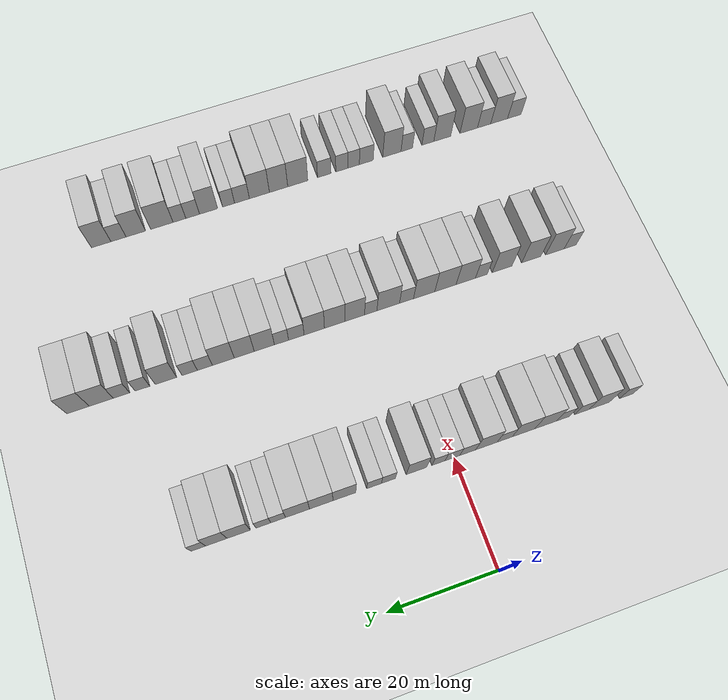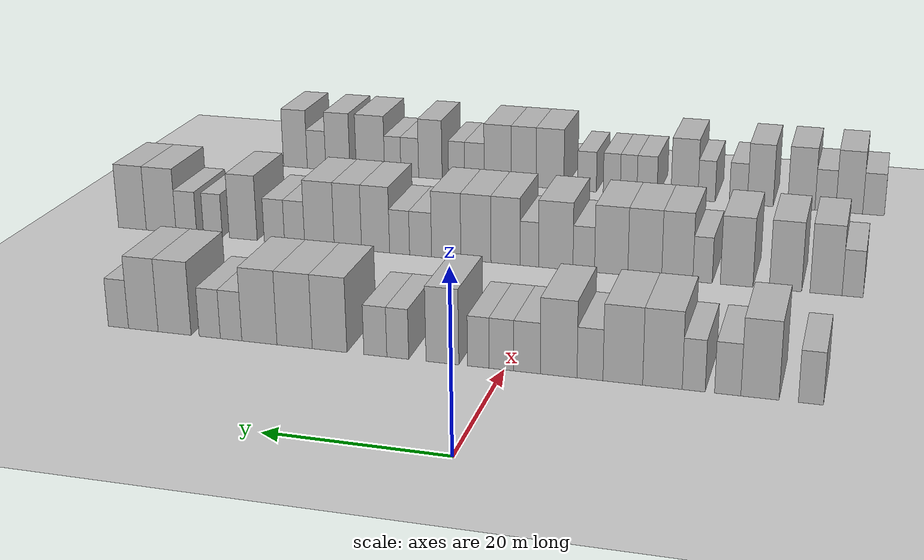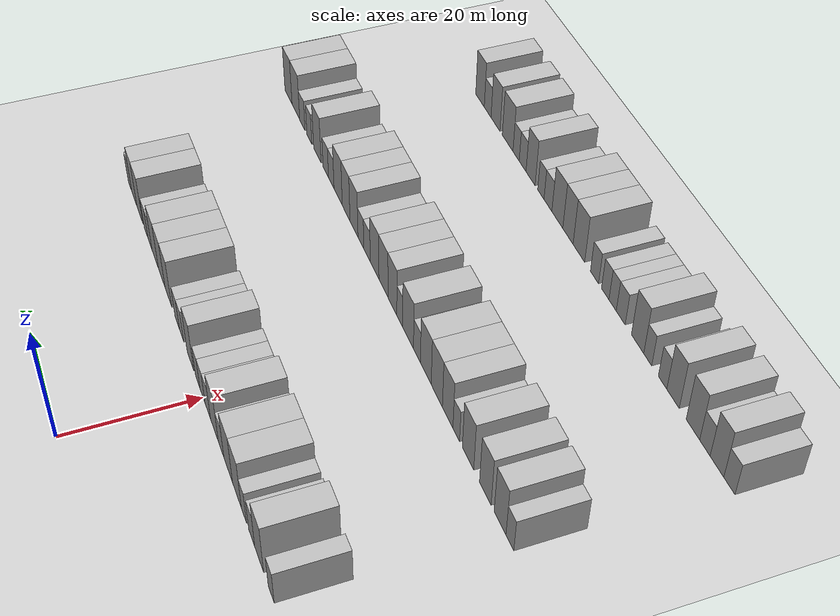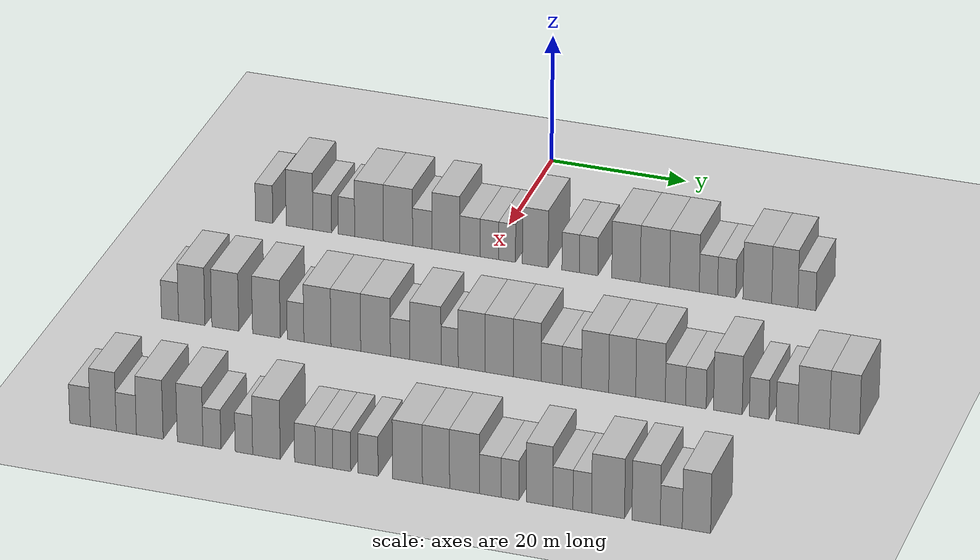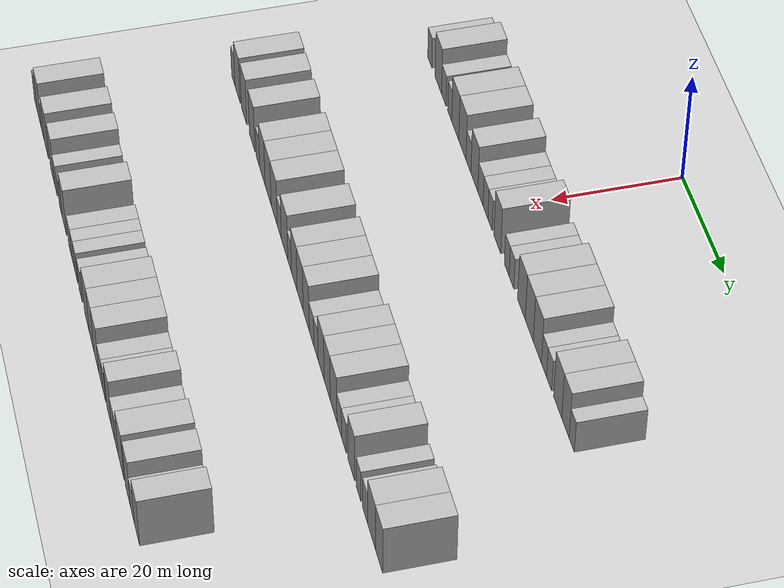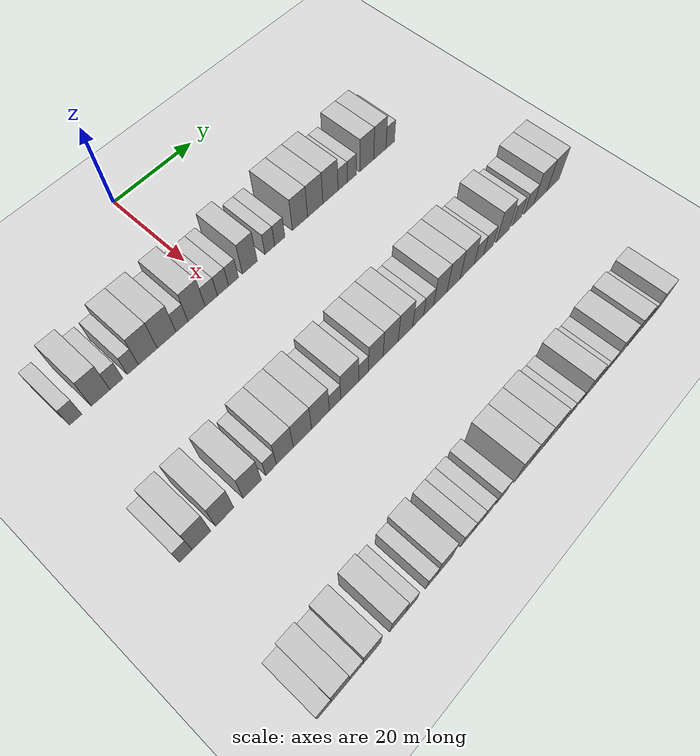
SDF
<sdf version="1.6">
 <world name="default">
  <include><name>ground_plane_1</name><uri>model://HANNAS_ground_plane</uri></include>
  <model name="building_109">
   <static>1</static>
   <pose>25.0000 -33.0625 0 0.000000 0.000000 0.000000</pose>
   <link name="link">
    <pose>0 0 3.00 0 0 0</pose>
    <collision name="collision"><geometry><box><size>10.0000 2.5903 6.0000</size></box></geometry></collision>
    <visual name="visual">
     <cast_shadows>0</cast_shadows>
     <geometry><box><size>10.0000 2.5903 6.0000</size></box></geometry>
     <material>
      <script>
       <uri>model://HANNAS_wall/materials/scripts</uri>
       <uri>model://HANNAS_wall/materials/textures</uri>
       <name>vrc/HANNAS_wall</name>
      </script>
     </material>
    </visual>
   </link>
  </model>
  <model name="building_110">
   <static>1</static>
   <pose>25.0000 -27.7689 0 0.000000 0.000000 0.000000</pose>
   <link name="link">
    <pose>0 0 4.50 0 0 0</pose>
    <collision name="collision"><geometry><box><size>10.0000 3.9970 9.0000</size></box></geometry></collision>
    <visual name="visual">
     <cast_shadows>0</cast_shadows>
     <geometry><box><size>10.0000 3.9970 9.0000</size></box></geometry>
     <material>
      <script>
       <uri>model://HANNAS_wall/materials/scripts</uri>
       <uri>model://HANNAS_wall/materials/textures</uri>
       <name>vrc/HANNAS_wall</name>
      </script>
     </material>
    </visual>
   </link>
  </model>
  <model name="building_111">
   <static>1</static>
   <pose>25.0000 -24.3842 0 0.000000 0.000000 0.000000</pose>
   <link name="link">
    <pose>0 0 3.00 0 0 0</pose>
    <collision name="collision"><geometry><box><size>10.0000 2.7723 6.0000</size></box></geometry></collision>
    <visual name="visual">
     <cast_shadows>0</cast_shadows>
     <geometry><box><size>10.0000 2.7723 6.0000</size></box></geometry>
     <material>
      <script>
       <uri>model://HANNAS_wall/materials/scripts</uri>
       <uri>model://HANNAS_wall/materials/textures</uri>
       <name>vrc/HANNAS_wall</name>
      </script>
     </material>
    </visual>
   </link>
  </model>
  <model name="building_112">
   <static>1</static>
   <pose>25.0000 -20.7769 0 0.000000 0.000000 0.000000</pose>
   <link name="link">
    <pose>0 0 3.00 0 0 0</pose>
    <collision name="collision"><geometry><box><size>10.0000 2.4424 6.0000</size></box></geometry></collision>
    <visual name="visual">
     <cast_shadows>0</cast_shadows>
     <geometry><box><size>10.0000 2.4424 6.0000</size></box></geometry>
     <material>
      <script>
       <uri>model://HANNAS_wall/materials/scripts</uri>
       <uri>model://HANNAS_wall/materials/textures</uri>
       <name>vrc/HANNAS_wall</name>
      </script>
     </material>
    </visual>
   </link>
  </model>
  <model name="building_113">
   <static>1</static>
   <pose>25.0000 -17.4277 0 0.000000 0.000000 0.000000</pose>
   <link name="link">
    <pose>0 0 4.50 0 0 0</pose>
    <collision name="collision"><geometry><box><size>10.0000 4.2559 9.0000</size></box></geometry></collision>
    <visual name="visual">
     <cast_shadows>0</cast_shadows>
     <geometry><box><size>10.0000 4.2559 9.0000</size></box></geometry>
     <material>
      <script>
       <uri>model://HANNAS_wall/materials/scripts</uri>
       <uri>model://HANNAS_wall/materials/textures</uri>
       <name>vrc/HANNAS_wall</name>
      </script>
     </material>
    </visual>
   </link>
  </model>
  <model name="building_114">
   <static>1</static>
   <pose>25.0000 -13.1424 0 0.000000 0.000000 0.000000</pose>
   <link name="link">
    <pose>0 0 4.50 0 0 0</pose>
    <collision name="collision"><geometry><box><size>10.0000 4.3146 9.0000</size></box></geometry></collision>
    <visual name="visual">
     <cast_shadows>0</cast_shadows>
     <geometry><box><size>10.0000 4.3146 9.0000</size></box></geometry>
     <material>
      <script>
       <uri>model://HANNAS_wall/materials/scripts</uri>
       <uri>model://HANNAS_wall/materials/textures</uri>
       <name>vrc/HANNAS_wall</name>
      </script>
     </material>
    </visual>
   </link>
  </model>
  <model name="building_115">
   <static>1</static>
   <pose>25.0000 -9.5608 0 0.000000 0.000000 0.000000</pose>
   <link name="link">
    <pose>0 0 3.00 0 0 0</pose>
    <collision name="collision"><geometry><box><size>10.0000 2.8487 6.0000</size></box></geometry></collision>
    <visual name="visual">
     <cast_shadows>0</cast_shadows>
     <geometry><box><size>10.0000 2.8487 6.0000</size></box></geometry>
     <material>
      <script>
       <uri>model://HANNAS_wall/materials/scripts</uri>
       <uri>model://HANNAS_wall/materials/textures</uri>
       <name>vrc/HANNAS_wall</name>
      </script>
     </material>
    </visual>
   </link>
  </model>
  <model name="building_116">
   <static>1</static>
   <pose>25.0000 -6.0993 0 0.000000 0.000000 0.000000</pose>
   <link name="link">
    <pose>0 0 4.50 0 0 0</pose>
    <collision name="collision"><geometry><box><size>10.0000 4.0742 9.0000</size></box></geometry></collision>
    <visual name="visual">
     <cast_shadows>0</cast_shadows>
     <geometry><box><size>10.0000 4.0742 9.0000</size></box></geometry>
     <material>
      <script>
       <uri>model://HANNAS_wall/materials/scripts</uri>
       <uri>model://HANNAS_wall/materials/textures</uri>
       <name>vrc/HANNAS_wall</name>
      </script>
     </material>
    </visual>
   </link>
  </model>
  <model name="building_117">
   <static>1</static>
   <pose>25.0000 -2.5724 0 0.000000 0.000000 0.000000</pose>
   <link name="link">
    <pose>0 0 3.00 0 0 0</pose>
    <collision name="collision"><geometry><box><size>10.0000 2.9797 6.0000</size></box></geometry></collision>
    <visual name="visual">
     <cast_shadows>0</cast_shadows>
     <geometry><box><size>10.0000 2.9797 6.0000</size></box></geometry>
     <material>
      <script>
       <uri>model://HANNAS_wall/materials/scripts</uri>
       <uri>model://HANNAS_wall/materials/textures</uri>
       <name>vrc/HANNAS_wall</name>
      </script>
     </material>
    </visual>
   </link>
  </model>
  <model name="building_118">
   <static>1</static>
   <pose>25.0000 0.3047 0 0.000000 0.000000 0.000000</pose>
   <link name="link">
    <pose>0 0 3.00 0 0 0</pose>
    <collision name="collision"><geometry><box><size>10.0000 2.7744 6.0000</size></box></geometry></collision>
    <visual name="visual">
     <cast_shadows>0</cast_shadows>
     <geometry><box><size>10.0000 2.7744 6.0000</size></box></geometry>
     <material>
      <script>
       <uri>model://HANNAS_wall/materials/scripts</uri>
       <uri>model://HANNAS_wall/materials/textures</uri>
       <name>vrc/HANNAS_wall</name>
      </script>
     </material>
    </visual>
   </link>
  </model>
  <model name="building_119">
   <static>1</static>
   <pose>25.0000 2.9134 0 0.000000 0.000000 0.000000</pose>
   <link name="link">
    <pose>0 0 3.00 0 0 0</pose>
    <collision name="collision"><geometry><box><size>10.0000 2.4431 6.0000</size></box></geometry></collision>
    <visual name="visual">
     <cast_shadows>0</cast_shadows>
     <geometry><box><size>10.0000 2.4431 6.0000</size></box></geometry>
     <material>
      <script>
       <uri>model://HANNAS_wall/materials/scripts</uri>
       <uri>model://HANNAS_wall/materials/textures</uri>
       <name>vrc/HANNAS_wall</name>
      </script>
     </material>
    </visual>
   </link>
  </model>
  <model name="building_120">
   <static>1</static>
   <pose>25.0000 7.0186 0 0.000000 0.000000 0.000000</pose>
   <link name="link">
    <pose>0 0 4.50 0 0 0</pose>
    <collision name="collision"><geometry><box><size>10.0000 3.7671 9.0000</size></box></geometry></collision>
    <visual name="visual">
     <cast_shadows>0</cast_shadows>
     <geometry><box><size>10.0000 3.7671 9.0000</size></box></geometry>
     <material>
      <script>
       <uri>model://HANNAS_wall/materials/scripts</uri>
       <uri>model://HANNAS_wall/materials/textures</uri>
       <name>vrc/HANNAS_wall</name>
      </script>
     </material>
    </visual>
   </link>
  </model>
  <model name="building_121">
   <static>1</static>
   <pose>25.0000 12.1765 0 0.000000 0.000000 0.000000</pose>
   <link name="link">
    <pose>0 0 3.00 0 0 0</pose>
    <collision name="collision"><geometry><box><size>10.0000 2.5488 6.0000</size></box></geometry></collision>
    <visual name="visual">
     <cast_shadows>0</cast_shadows>
     <geometry><box><size>10.0000 2.5488 6.0000</size></box></geometry>
     <material>
      <script>
       <uri>model://HANNAS_wall/materials/scripts</uri>
       <uri>model://HANNAS_wall/materials/textures</uri>
       <name>vrc/HANNAS_wall</name>
      </script>
     </material>
    </visual>
   </link>
  </model>
  <model name="building_122">
   <static>1</static>
   <pose>25.0000 14.7962 0 0.000000 0.000000 0.000000</pose>
   <link name="link">
    <pose>0 0 3.00 0 0 0</pose>
    <collision name="collision"><geometry><box><size>10.0000 2.6904 6.0000</size></box></geometry></collision>
    <visual name="visual">
     <cast_shadows>0</cast_shadows>
     <geometry><box><size>10.0000 2.6904 6.0000</size></box></geometry>
     <material>
      <script>
       <uri>model://HANNAS_wall/materials/scripts</uri>
       <uri>model://HANNAS_wall/materials/textures</uri>
       <name>vrc/HANNAS_wall</name>
      </script>
     </material>
    </visual>
   </link>
  </model>
  <model name="building_123">
   <static>1</static>
   <pose>25.0000 20.2078 0 0.000000 0.000000 0.000000</pose>
   <link name="link">
    <pose>0 0 4.50 0 0 0</pose>
    <collision name="collision"><geometry><box><size>10.0000 4.1329 9.0000</size></box></geometry></collision>
    <visual name="visual">
     <cast_shadows>0</cast_shadows>
     <geometry><box><size>10.0000 4.1329 9.0000</size></box></geometry>
     <material>
      <script>
       <uri>model://HANNAS_wall/materials/scripts</uri>
       <uri>model://HANNAS_wall/materials/textures</uri>
       <name>vrc/HANNAS_wall</name>
      </script>
     </material>
    </visual>
   </link>
  </model>
  <model name="building_124">
   <static>1</static>
   <pose>25.0000 24.3872 0 0.000000 0.000000 0.000000</pose>
   <link name="link">
    <pose>0 0 4.50 0 0 0</pose>
    <collision name="collision"><geometry><box><size>10.0000 4.2260 9.0000</size></box></geometry></collision>
    <visual name="visual">
     <cast_shadows>0</cast_shadows>
     <geometry><box><size>10.0000 4.2260 9.0000</size></box></geometry>
     <material>
      <script>
       <uri>model://HANNAS_wall/materials/scripts</uri>
       <uri>model://HANNAS_wall/materials/textures</uri>
       <name>vrc/HANNAS_wall</name>
      </script>
     </material>
    </visual>
   </link>
  </model>
  <model name="building_125">
   <static>1</static>
   <pose>25.0000 28.6368 0 0.000000 0.000000 0.000000</pose>
   <link name="link">
    <pose>0 0 4.50 0 0 0</pose>
    <collision name="collision"><geometry><box><size>10.0000 4.2732 9.0000</size></box></geometry></collision>
    <visual name="visual">
     <cast_shadows>0</cast_shadows>
     <geometry><box><size>10.0000 4.2732 9.0000</size></box></geometry>
     <material>
      <script>
       <uri>model://HANNAS_wall/materials/scripts</uri>
       <uri>model://HANNAS_wall/materials/textures</uri>
       <name>vrc/HANNAS_wall</name>
      </script>
     </material>
    </visual>
   </link>
  </model>
  <model name="building_126">
   <static>1</static>
   <pose>25.0000 32.0913 0 0.000000 0.000000 0.000000</pose>
   <link name="link">
    <pose>0 0 3.00 0 0 0</pose>
    <collision name="collision"><geometry><box><size>10.0000 2.6359 6.0000</size></box></geometry></collision>
    <visual name="visual">
     <cast_shadows>0</cast_shadows>
     <geometry><box><size>10.0000 2.6359 6.0000</size></box></geometry>
     <material>
      <script>
       <uri>model://HANNAS_wall/materials/scripts</uri>
       <uri>model://HANNAS_wall/materials/textures</uri>
       <name>vrc/HANNAS_wall</name>
      </script>
     </material>
    </visual>
   </link>
  </model>
  <model name="building_127">
   <static>1</static>
   <pose>25.0000 34.7178 0 0.000000 0.000000 0.000000</pose>
   <link name="link">
    <pose>0 0 3.00 0 0 0</pose>
    <collision name="collision"><geometry><box><size>10.0000 2.6172 6.0000</size></box></geometry></collision>
    <visual name="visual">
     <cast_shadows>0</cast_shadows>
     <geometry><box><size>10.0000 2.6172 6.0000</size></box></geometry>
     <material>
      <script>
       <uri>model://HANNAS_wall/materials/scripts</uri>
       <uri>model://HANNAS_wall/materials/textures</uri>
       <name>vrc/HANNAS_wall</name>
      </script>
     </material>
    </visual>
   </link>
  </model>
  <model name="building_128">
   <static>1</static>
   <pose>25.0000 39.0813 0 0.000000 0.000000 0.000000</pose>
   <link name="link">
    <pose>0 0 4.50 0 0 0</pose>
    <collision name="collision"><geometry><box><size>10.0000 4.1098 9.0000</size></box></geometry></collision>
    <visual name="visual">
     <cast_shadows>0</cast_shadows>
     <geometry><box><size>10.0000 4.1098 9.0000</size></box></geometry>
     <material>
      <script>
       <uri>model://HANNAS_wall/materials/scripts</uri>
       <uri>model://HANNAS_wall/materials/textures</uri>
       <name>vrc/HANNAS_wall</name>
      </script>
     </material>
    </visual>
   </link>
  </model>
  <model name="building_129">
   <static>1</static>
   <pose>25.0000 43.0020 0 0.000000 0.000000 0.000000</pose>
   <link name="link">
    <pose>0 0 4.50 0 0 0</pose>
    <collision name="collision"><geometry><box><size>10.0000 3.7316 9.0000</size></box></geometry></collision>
    <visual name="visual">
     <cast_shadows>0</cast_shadows>
     <geometry><box><size>10.0000 3.7316 9.0000</size></box></geometry>
     <material>
      <script>
       <uri>model://HANNAS_wall/materials/scripts</uri>
       <uri>model://HANNAS_wall/materials/textures</uri>
       <name>vrc/HANNAS_wall</name>
      </script>
     </material>
    </visual>
   </link>
  </model>
  <model name="building_130">
   <static>1</static>
   <pose>25.0000 46.1460 0 0.000000 0.000000 0.000000</pose>
   <link name="link">
    <pose>0 0 3.00 0 0 0</pose>
    <collision name="collision"><geometry><box><size>10.0000 2.5563 6.0000</size></box></geometry></collision>
    <visual name="visual">
     <cast_shadows>0</cast_shadows>
     <geometry><box><size>10.0000 2.5563 6.0000</size></box></geometry>
     <material>
      <script>
       <uri>model://HANNAS_wall/materials/scripts</uri>
       <uri>model://HANNAS_wall/materials/textures</uri>
       <name>vrc/HANNAS_wall</name>
      </script>
     </material>
    </visual>
   </link>
  </model>
  <model name="building_326">
   <static>1</static>
   <pose>55.0000 -35.8753 0 0.000000 0.000000 0.000000</pose>
   <link name="link">
    <pose>0 0 3.00 0 0 0</pose>
    <collision name="collision"><geometry><box><size>10.0000 2.5054 6.0000</size></box></geometry></collision>
    <visual name="visual">
     <cast_shadows>0</cast_shadows>
     <geometry><box><size>10.0000 2.5054 6.0000</size></box></geometry>
     <material>
      <script>
       <uri>model://HANNAS_wall/materials/scripts</uri>
       <uri>model://HANNAS_wall/materials/textures</uri>
       <name>vrc/HANNAS_wall</name>
      </script>
     </material>
    </visual>
   </link>
  </model>
  <model name="building_327">
   <static>1</static>
   <pose>55.0000 -32.6952 0 0.000000 0.000000 0.000000</pose>
   <link name="link">
    <pose>0 0 4.50 0 0 0</pose>
    <collision name="collision"><geometry><box><size>10.0000 3.8547 9.0000</size></box></geometry></collision>
    <visual name="visual">
     <cast_shadows>0</cast_shadows>
     <geometry><box><size>10.0000 3.8547 9.0000</size></box></geometry>
     <material>
      <script>
       <uri>model://HANNAS_wall/materials/scripts</uri>
       <uri>model://HANNAS_wall/materials/textures</uri>
       <name>vrc/HANNAS_wall</name>
      </script>
     </material>
    </visual>
   </link>
  </model>
  <model name="building_328">
   <static>1</static>
   <pose>55.0000 -27.8082 0 0.000000 0.000000 0.000000</pose>
   <link name="link">
    <pose>0 0 4.50 0 0 0</pose>
    <collision name="collision"><geometry><box><size>10.0000 3.9194 9.0000</size></box></geometry></collision>
    <visual name="visual">
     <cast_shadows>0</cast_shadows>
     <geometry><box><size>10.0000 3.9194 9.0000</size></box></geometry>
     <material>
      <script>
       <uri>model://HANNAS_wall/materials/scripts</uri>
       <uri>model://HANNAS_wall/materials/textures</uri>
       <name>vrc/HANNAS_wall</name>
      </script>
     </material>
    </visual>
   </link>
  </model>
  <model name="building_329">
   <static>1</static>
   <pose>55.0000 -21.8397 0 0.000000 0.000000 0.000000</pose>
   <link name="link">
    <pose>0 0 4.50 0 0 0</pose>
    <collision name="collision"><geometry><box><size>10.0000 4.0176 9.0000</size></box></geometry></collision>
    <visual name="visual">
     <cast_shadows>0</cast_shadows>
     <geometry><box><size>10.0000 4.0176 9.0000</size></box></geometry>
     <material>
      <script>
       <uri>model://HANNAS_wall/materials/scripts</uri>
       <uri>model://HANNAS_wall/materials/textures</uri>
       <name>vrc/HANNAS_wall</name>
      </script>
     </material>
    </visual>
   </link>
  </model>
  <model name="building_330">
   <static>1</static>
   <pose>55.0000 -17.6273 0 0.000000 0.000000 0.000000</pose>
   <link name="link">
    <pose>0 0 3.00 0 0 0</pose>
    <collision name="collision"><geometry><box><size>10.0000 2.4071 6.0000</size></box></geometry></collision>
    <visual name="visual">
     <cast_shadows>0</cast_shadows>
     <geometry><box><size>10.0000 2.4071 6.0000</size></box></geometry>
     <material>
      <script>
       <uri>model://HANNAS_wall/materials/scripts</uri>
       <uri>model://HANNAS_wall/materials/textures</uri>
       <name>vrc/HANNAS_wall</name>
      </script>
     </material>
    </visual>
   </link>
  </model>
  <model name="building_331">
   <static>1</static>
   <pose>55.0000 -14.4724 0 0.000000 0.000000 0.000000</pose>
   <link name="link">
    <pose>0 0 4.50 0 0 0</pose>
    <collision name="collision"><geometry><box><size>10.0000 3.9026 9.0000</size></box></geometry></collision>
    <visual name="visual">
     <cast_shadows>0</cast_shadows>
     <geometry><box><size>10.0000 3.9026 9.0000</size></box></geometry>
     <material>
      <script>
       <uri>model://HANNAS_wall/materials/scripts</uri>
       <uri>model://HANNAS_wall/materials/textures</uri>
       <name>vrc/HANNAS_wall</name>
      </script>
     </material>
    </visual>
   </link>
  </model>
  <model name="building_332">
   <static>1</static>
   <pose>55.0000 -10.3844 0 0.000000 0.000000 0.000000</pose>
   <link name="link">
    <pose>0 0 4.50 0 0 0</pose>
    <collision name="collision"><geometry><box><size>10.0000 4.2735 9.0000</size></box></geometry></collision>
    <visual name="visual">
     <cast_shadows>0</cast_shadows>
     <geometry><box><size>10.0000 4.2735 9.0000</size></box></geometry>
     <material>
      <script>
       <uri>model://HANNAS_wall/materials/scripts</uri>
       <uri>model://HANNAS_wall/materials/textures</uri>
       <name>vrc/HANNAS_wall</name>
      </script>
     </material>
    </visual>
   </link>
  </model>
  <model name="building_333">
   <static>1</static>
   <pose>55.0000 -6.1240 0 0.000000 0.000000 0.000000</pose>
   <link name="link">
    <pose>0 0 4.50 0 0 0</pose>
    <collision name="collision"><geometry><box><size>10.0000 4.2473 9.0000</size></box></geometry></collision>
    <visual name="visual">
     <cast_shadows>0</cast_shadows>
     <geometry><box><size>10.0000 4.2473 9.0000</size></box></geometry>
     <material>
      <script>
       <uri>model://HANNAS_wall/materials/scripts</uri>
       <uri>model://HANNAS_wall/materials/textures</uri>
       <name>vrc/HANNAS_wall</name>
      </script>
     </material>
    </visual>
   </link>
  </model>
  <model name="building_334">
   <static>1</static>
   <pose>55.0000 -2.6113 0 0.000000 0.000000 0.000000</pose>
   <link name="link">
    <pose>0 0 3.00 0 0 0</pose>
    <collision name="collision"><geometry><box><size>10.0000 2.7782 6.0000</size></box></geometry></collision>
    <visual name="visual">
     <cast_shadows>0</cast_shadows>
     <geometry><box><size>10.0000 2.7782 6.0000</size></box></geometry>
     <material>
      <script>
       <uri>model://HANNAS_wall/materials/scripts</uri>
       <uri>model://HANNAS_wall/materials/textures</uri>
       <name>vrc/HANNAS_wall</name>
      </script>
     </material>
    </visual>
   </link>
  </model>
  <model name="building_335">
   <static>1</static>
   <pose>55.0000 1.0071 0 0.000000 0.000000 0.000000</pose>
   <link name="link">
    <pose>0 0 4.50 0 0 0</pose>
    <collision name="collision"><geometry><box><size>10.0000 4.4586 9.0000</size></box></geometry></collision>
    <visual name="visual">
     <cast_shadows>0</cast_shadows>
     <geometry><box><size>10.0000 4.4586 9.0000</size></box></geometry>
     <material>
      <script>
       <uri>model://HANNAS_wall/materials/scripts</uri>
       <uri>model://HANNAS_wall/materials/textures</uri>
       <name>vrc/HANNAS_wall</name>
      </script>
     </material>
    </visual>
   </link>
  </model>
  <model name="building_336">
   <static>1</static>
   <pose>55.0000 4.4590 0 0.000000 0.000000 0.000000</pose>
   <link name="link">
    <pose>0 0 3.00 0 0 0</pose>
    <collision name="collision"><geometry><box><size>10.0000 2.4451 6.0000</size></box></geometry></collision>
    <visual name="visual">
     <cast_shadows>0</cast_shadows>
     <geometry><box><size>10.0000 2.4451 6.0000</size></box></geometry>
     <material>
      <script>
       <uri>model://HANNAS_wall/materials/scripts</uri>
       <uri>model://HANNAS_wall/materials/textures</uri>
       <name>vrc/HANNAS_wall</name>
      </script>
     </material>
    </visual>
   </link>
  </model>
  <model name="building_337">
   <static>1</static>
   <pose>55.0000 7.5793 0 0.000000 0.000000 0.000000</pose>
   <link name="link">
    <pose>0 0 4.50 0 0 0</pose>
    <collision name="collision"><geometry><box><size>10.0000 3.7955 9.0000</size></box></geometry></collision>
    <visual name="visual">
     <cast_shadows>0</cast_shadows>
     <geometry><box><size>10.0000 3.7955 9.0000</size></box></geometry>
     <material>
      <script>
       <uri>model://HANNAS_wall/materials/scripts</uri>
       <uri>model://HANNAS_wall/materials/textures</uri>
       <name>vrc/HANNAS_wall</name>
      </script>
     </material>
    </visual>
   </link>
  </model>
  <model name="building_338">
   <static>1</static>
   <pose>55.0000 11.4789 0 0.000000 0.000000 0.000000</pose>
   <link name="link">
    <pose>0 0 4.50 0 0 0</pose>
    <collision name="collision"><geometry><box><size>10.0000 4.0038 9.0000</size></box></geometry></collision>
    <visual name="visual">
     <cast_shadows>0</cast_shadows>
     <geometry><box><size>10.0000 4.0038 9.0000</size></box></geometry>
     <material>
      <script>
       <uri>model://HANNAS_wall/materials/scripts</uri>
       <uri>model://HANNAS_wall/materials/textures</uri>
       <name>vrc/HANNAS_wall</name>
      </script>
     </material>
    </visual>
   </link>
  </model>
  <model name="building_339">
   <static>1</static>
   <pose>55.0000 15.4428 0 0.000000 0.000000 0.000000</pose>
   <link name="link">
    <pose>0 0 4.50 0 0 0</pose>
    <collision name="collision"><geometry><box><size>10.0000 3.9239 9.0000</size></box></geometry></collision>
    <visual name="visual">
     <cast_shadows>0</cast_shadows>
     <geometry><box><size>10.0000 3.9239 9.0000</size></box></geometry>
     <material>
      <script>
       <uri>model://HANNAS_wall/materials/scripts</uri>
       <uri>model://HANNAS_wall/materials/textures</uri>
       <name>vrc/HANNAS_wall</name>
      </script>
     </material>
    </visual>
   </link>
  </model>
  <model name="building_340">
   <static>1</static>
   <pose>55.0000 18.8974 0 0.000000 0.000000 0.000000</pose>
   <link name="link">
    <pose>0 0 3.00 0 0 0</pose>
    <collision name="collision"><geometry><box><size>10.0000 2.9852 6.0000</size></box></geometry></collision>
    <visual name="visual">
     <cast_shadows>0</cast_shadows>
     <geometry><box><size>10.0000 2.9852 6.0000</size></box></geometry>
     <material>
      <script>
       <uri>model://HANNAS_wall/materials/scripts</uri>
       <uri>model://HANNAS_wall/materials/textures</uri>
       <name>vrc/HANNAS_wall</name>
      </script>
     </material>
    </visual>
   </link>
  </model>
  <model name="building_341">
   <static>1</static>
   <pose>55.0000 21.7458 0 0.000000 0.000000 0.000000</pose>
   <link name="link">
    <pose>0 0 3.00 0 0 0</pose>
    <collision name="collision"><geometry><box><size>10.0000 2.7116 6.0000</size></box></geometry></collision>
    <visual name="visual">
     <cast_shadows>0</cast_shadows>
     <geometry><box><size>10.0000 2.7116 6.0000</size></box></geometry>
     <material>
      <script>
       <uri>model://HANNAS_wall/materials/scripts</uri>
       <uri>model://HANNAS_wall/materials/textures</uri>
       <name>vrc/HANNAS_wall</name>
      </script>
     </material>
    </visual>
   </link>
  </model>
  <model name="building_342">
   <static>1</static>
   <pose>55.0000 25.0195 0 0.000000 0.000000 0.000000</pose>
   <link name="link">
    <pose>0 0 4.50 0 0 0</pose>
    <collision name="collision"><geometry><box><size>10.0000 3.8357 9.0000</size></box></geometry></collision>
    <visual name="visual">
     <cast_shadows>0</cast_shadows>
     <geometry><box><size>10.0000 3.8357 9.0000</size></box></geometry>
     <material>
      <script>
       <uri>model://HANNAS_wall/materials/scripts</uri>
       <uri>model://HANNAS_wall/materials/textures</uri>
       <name>vrc/HANNAS_wall</name>
      </script>
     </material>
    </visual>
   </link>
  </model>
  <model name="building_343">
   <static>1</static>
   <pose>55.0000 28.8304 0 0.000000 0.000000 0.000000</pose>
   <link name="link">
    <pose>0 0 4.50 0 0 0</pose>
    <collision name="collision"><geometry><box><size>10.0000 3.7861 9.0000</size></box></geometry></collision>
    <visual name="visual">
     <cast_shadows>0</cast_shadows>
     <geometry><box><size>10.0000 3.7861 9.0000</size></box></geometry>
     <material>
      <script>
       <uri>model://HANNAS_wall/materials/scripts</uri>
       <uri>model://HANNAS_wall/materials/textures</uri>
       <name>vrc/HANNAS_wall</name>
      </script>
     </material>
    </visual>
   </link>
  </model>
  <model name="building_344">
   <static>1</static>
   <pose>55.0000 32.7847 0 0.000000 0.000000 0.000000</pose>
   <link name="link">
    <pose>0 0 4.50 0 0 0</pose>
    <collision name="collision"><geometry><box><size>10.0000 4.1223 9.0000</size></box></geometry></collision>
    <visual name="visual">
     <cast_shadows>0</cast_shadows>
     <geometry><box><size>10.0000 4.1223 9.0000</size></box></geometry>
     <material>
      <script>
       <uri>model://HANNAS_wall/materials/scripts</uri>
       <uri>model://HANNAS_wall/materials/textures</uri>
       <name>vrc/HANNAS_wall</name>
      </script>
     </material>
    </visual>
   </link>
  </model>
  <model name="building_345">
   <static>1</static>
   <pose>55.0000 36.2588 0 0.000000 0.000000 0.000000</pose>
   <link name="link">
    <pose>0 0 3.00 0 0 0</pose>
    <collision name="collision"><geometry><box><size>10.0000 2.8260 6.0000</size></box></geometry></collision>
    <visual name="visual">
     <cast_shadows>0</cast_shadows>
     <geometry><box><size>10.0000 2.8260 6.0000</size></box></geometry>
     <material>
      <script>
       <uri>model://HANNAS_wall/materials/scripts</uri>
       <uri>model://HANNAS_wall/materials/textures</uri>
       <name>vrc/HANNAS_wall</name>
      </script>
     </material>
    </visual>
   </link>
  </model>
  <model name="building_346">
   <static>1</static>
   <pose>55.0000 39.1075 0 0.000000 0.000000 0.000000</pose>
   <link name="link">
    <pose>0 0 3.00 0 0 0</pose>
    <collision name="collision"><geometry><box><size>10.0000 2.8714 6.0000</size></box></geometry></collision>
    <visual name="visual">
     <cast_shadows>0</cast_shadows>
     <geometry><box><size>10.0000 2.8714 6.0000</size></box></geometry>
     <material>
      <script>
       <uri>model://HANNAS_wall/materials/scripts</uri>
       <uri>model://HANNAS_wall/materials/textures</uri>
       <name>vrc/HANNAS_wall</name>
      </script>
     </material>
    </visual>
   </link>
  </model>
  <model name="building_347">
   <static>1</static>
   <pose>55.0000 43.5326 0 0.000000 0.000000 0.000000</pose>
   <link name="link">
    <pose>0 0 4.50 0 0 0</pose>
    <collision name="collision"><geometry><box><size>10.0000 3.9789 9.0000</size></box></geometry></collision>
    <visual name="visual">
     <cast_shadows>0</cast_shadows>
     <geometry><box><size>10.0000 3.9789 9.0000</size></box></geometry>
     <material>
      <script>
       <uri>model://HANNAS_wall/materials/scripts</uri>
       <uri>model://HANNAS_wall/materials/textures</uri>
       <name>vrc/HANNAS_wall</name>
      </script>
     </material>
    </visual>
   </link>
  </model>
  <model name="building_348">
   <static>1</static>
   <pose>55.0000 47.8714 0 0.000000 0.000000 0.000000</pose>
   <link name="link">
    <pose>0 0 3.00 0 0 0</pose>
    <collision name="collision"><geometry><box><size>10.0000 2.6987 6.0000</size></box></geometry></collision>
    <visual name="visual">
     <cast_shadows>0</cast_shadows>
     <geometry><box><size>10.0000 2.6987 6.0000</size></box></geometry>
     <material>
      <script>
       <uri>model://HANNAS_wall/materials/scripts</uri>
       <uri>model://HANNAS_wall/materials/textures</uri>
       <name>vrc/HANNAS_wall</name>
      </script>
     </material>
    </visual>
   </link>
  </model>
  <model name="building_349">
   <static>1</static>
   <pose>55.0000 51.7200 0 0.000000 0.000000 0.000000</pose>
   <link name="link">
    <pose>0 0 3.00 0 0 0</pose>
    <collision name="collision"><geometry><box><size>10.0000 2.9985 6.0000</size></box></geometry></collision>
    <visual name="visual">
     <cast_shadows>0</cast_shadows>
     <geometry><box><size>10.0000 2.9985 6.0000</size></box></geometry>
     <material>
      <script>
       <uri>model://HANNAS_wall/materials/scripts</uri>
       <uri>model://HANNAS_wall/materials/textures</uri>
       <name>vrc/HANNAS_wall</name>
      </script>
     </material>
    </visual>
   </link>
  </model>
  <model name="building_350">
   <static>1</static>
   <pose>55.0000 55.4023 0 0.000000 0.000000 0.000000</pose>
   <link name="link">
    <pose>0 0 4.50 0 0 0</pose>
    <collision name="collision"><geometry><box><size>10.0000 4.3660 9.0000</size></box></geometry></collision>
    <visual name="visual">
     <cast_shadows>0</cast_shadows>
     <geometry><box><size>10.0000 4.3660 9.0000</size></box></geometry>
     <material>
      <script>
       <uri>model://HANNAS_wall/materials/scripts</uri>
       <uri>model://HANNAS_wall/materials/textures</uri>
       <name>vrc/HANNAS_wall</name>
      </script>
     </material>
    </visual>
   </link>
  </model>
  <model name="building_351">
   <static>1</static>
   <pose>55.0000 59.6369 0 0.000000 0.000000 0.000000</pose>
   <link name="link">
    <pose>0 0 4.50 0 0 0</pose>
    <collision name="collision"><geometry><box><size>10.0000 4.1033 9.0000</size></box></geometry></collision>
    <visual name="visual">
     <cast_shadows>0</cast_shadows>
     <geometry><box><size>10.0000 4.1033 9.0000</size></box></geometry>
     <material>
      <script>
       <uri>model://HANNAS_wall/materials/scripts</uri>
       <uri>model://HANNAS_wall/materials/textures</uri>
       <name>vrc/HANNAS_wall</name>
      </script>
     </material>
    </visual>
   </link>
  </model>
  <model name="building_554">
   <static>1</static>
   <pose>85.0000 -37.2692 0 0.000000 0.000000 0.000000</pose>
   <link name="link">
    <pose>0 0 3.00 0 0 0</pose>
    <collision name="collision"><geometry><box><size>10.0000 2.9426 6.0000</size></box></geometry></collision>
    <visual name="visual">
     <cast_shadows>0</cast_shadows>
     <geometry><box><size>10.0000 2.9426 6.0000</size></box></geometry>
     <material>
      <script>
       <uri>model://HANNAS_wall/materials/scripts</uri>
       <uri>model://HANNAS_wall/materials/textures</uri>
       <name>vrc/HANNAS_wall</name>
      </script>
     </material>
    </visual>
   </link>
  </model>
  <model name="building_555">
   <static>1</static>
   <pose>85.0000 -33.9635 0 0.000000 0.000000 0.000000</pose>
   <link name="link">
    <pose>0 0 4.50 0 0 0</pose>
    <collision name="collision"><geometry><box><size>10.0000 3.6686 9.0000</size></box></geometry></collision>
    <visual name="visual">
     <cast_shadows>0</cast_shadows>
     <geometry><box><size>10.0000 3.6686 9.0000</size></box></geometry>
     <material>
      <script>
       <uri>model://HANNAS_wall/materials/scripts</uri>
       <uri>model://HANNAS_wall/materials/textures</uri>
       <name>vrc/HANNAS_wall</name>
      </script>
     </material>
    </visual>
   </link>
  </model>
  <model name="building_556">
   <static>1</static>
   <pose>85.0000 -30.6973 0 0.000000 0.000000 0.000000</pose>
   <link name="link">
    <pose>0 0 3.00 0 0 0</pose>
    <collision name="collision"><geometry><box><size>10.0000 2.8639 6.0000</size></box></geometry></collision>
    <visual name="visual">
     <cast_shadows>0</cast_shadows>
     <geometry><box><size>10.0000 2.8639 6.0000</size></box></geometry>
     <material>
      <script>
       <uri>model://HANNAS_wall/materials/scripts</uri>
       <uri>model://HANNAS_wall/materials/textures</uri>
       <name>vrc/HANNAS_wall</name>
      </script>
     </material>
    </visual>
   </link>
  </model>
  <model name="building_557">
   <static>1</static>
   <pose>85.0000 -27.3738 0 0.000000 0.000000 0.000000</pose>
   <link name="link">
    <pose>0 0 4.50 0 0 0</pose>
    <collision name="collision"><geometry><box><size>10.0000 3.7830 9.0000</size></box></geometry></collision>
    <visual name="visual">
     <cast_shadows>0</cast_shadows>
     <geometry><box><size>10.0000 3.7830 9.0000</size></box></geometry>
     <material>
      <script>
       <uri>model://HANNAS_wall/materials/scripts</uri>
       <uri>model://HANNAS_wall/materials/textures</uri>
       <name>vrc/HANNAS_wall</name>
      </script>
     </material>
    </visual>
   </link>
  </model>
  <model name="building_558">
   <static>1</static>
   <pose>85.0000 -21.6729 0 0.000000 0.000000 0.000000</pose>
   <link name="link">
    <pose>0 0 4.50 0 0 0</pose>
    <collision name="collision"><geometry><box><size>10.0000 3.6187 9.0000</size></box></geometry></collision>
    <visual name="visual">
     <cast_shadows>0</cast_shadows>
     <geometry><box><size>10.0000 3.6187 9.0000</size></box></geometry>
     <material>
      <script>
       <uri>model://HANNAS_wall/materials/scripts</uri>
       <uri>model://HANNAS_wall/materials/textures</uri>
       <name>vrc/HANNAS_wall</name>
      </script>
     </material>
    </visual>
   </link>
  </model>
  <model name="building_559">
   <static>1</static>
   <pose>85.0000 -18.5969 0 0.000000 0.000000 0.000000</pose>
   <link name="link">
    <pose>0 0 3.00 0 0 0</pose>
    <collision name="collision"><geometry><box><size>10.0000 2.5334 6.0000</size></box></geometry></collision>
    <visual name="visual">
     <cast_shadows>0</cast_shadows>
     <geometry><box><size>10.0000 2.5334 6.0000</size></box></geometry>
     <material>
      <script>
       <uri>model://HANNAS_wall/materials/scripts</uri>
       <uri>model://HANNAS_wall/materials/textures</uri>
       <name>vrc/HANNAS_wall</name>
      </script>
     </material>
    </visual>
   </link>
  </model>
  <model name="building_560">
   <static>1</static>
   <pose>85.0000 -14.1073 0 0.000000 0.000000 0.000000</pose>
   <link name="link">
    <pose>0 0 3.00 0 0 0</pose>
    <collision name="collision"><geometry><box><size>10.0000 2.4458 6.0000</size></box></geometry></collision>
    <visual name="visual">
     <cast_shadows>0</cast_shadows>
     <geometry><box><size>10.0000 2.4458 6.0000</size></box></geometry>
     <material>
      <script>
       <uri>model://HANNAS_wall/materials/scripts</uri>
       <uri>model://HANNAS_wall/materials/textures</uri>
       <name>vrc/HANNAS_wall</name>
      </script>
     </material>
    </visual>
   </link>
  </model>
  <model name="building_561">
   <static>1</static>
   <pose>85.0000 -10.9543 0 0.000000 0.000000 0.000000</pose>
   <link name="link">
    <pose>0 0 4.50 0 0 0</pose>
    <collision name="collision"><geometry><box><size>10.0000 3.8602 9.0000</size></box></geometry></collision>
    <visual name="visual">
     <cast_shadows>0</cast_shadows>
     <geometry><box><size>10.0000 3.8602 9.0000</size></box></geometry>
     <material>
      <script>
       <uri>model://HANNAS_wall/materials/scripts</uri>
       <uri>model://HANNAS_wall/materials/textures</uri>
       <name>vrc/HANNAS_wall</name>
      </script>
     </material>
    </visual>
   </link>
  </model>
  <model name="building_562">
   <static>1</static>
   <pose>85.0000 -5.5721 0 0.000000 0.000000 0.000000</pose>
   <link name="link">
    <pose>0 0 3.00 0 0 0</pose>
    <collision name="collision"><geometry><box><size>10.0000 2.9042 6.0000</size></box></geometry></collision>
    <visual name="visual">
     <cast_shadows>0</cast_shadows>
     <geometry><box><size>10.0000 2.9042 6.0000</size></box></geometry>
     <material>
      <script>
       <uri>model://HANNAS_wall/materials/scripts</uri>
       <uri>model://HANNAS_wall/materials/textures</uri>
       <name>vrc/HANNAS_wall</name>
      </script>
     </material>
    </visual>
   </link>
  </model>
  <model name="building_563">
   <static>1</static>
   <pose>85.0000 -2.9116 0 0.000000 0.000000 0.000000</pose>
   <link name="link">
    <pose>0 0 3.00 0 0 0</pose>
    <collision name="collision"><geometry><box><size>10.0000 2.4167 6.0000</size></box></geometry></collision>
    <visual name="visual">
     <cast_shadows>0</cast_shadows>
     <geometry><box><size>10.0000 2.4167 6.0000</size></box></geometry>
     <material>
      <script>
       <uri>model://HANNAS_wall/materials/scripts</uri>
       <uri>model://HANNAS_wall/materials/textures</uri>
       <name>vrc/HANNAS_wall</name>
      </script>
     </material>
    </visual>
   </link>
  </model>
  <model name="building_564">
   <static>1</static>
   <pose>85.0000 -0.4543 0 0.000000 0.000000 0.000000</pose>
   <link name="link">
    <pose>0 0 3.00 0 0 0</pose>
    <collision name="collision"><geometry><box><size>10.0000 2.4979 6.0000</size></box></geometry></collision>
    <visual name="visual">
     <cast_shadows>0</cast_shadows>
     <geometry><box><size>10.0000 2.4979 6.0000</size></box></geometry>
     <material>
      <script>
       <uri>model://HANNAS_wall/materials/scripts</uri>
       <uri>model://HANNAS_wall/materials/textures</uri>
       <name>vrc/HANNAS_wall</name>
      </script>
     </material>
    </visual>
   </link>
  </model>
  <model name="building_565">
   <static>1</static>
   <pose>85.0000 3.1892 0 0.000000 0.000000 0.000000</pose>
   <link name="link">
    <pose>0 0 3.00 0 0 0</pose>
    <collision name="collision"><geometry><box><size>10.0000 2.7892 6.0000</size></box></geometry></collision>
    <visual name="visual">
     <cast_shadows>0</cast_shadows>
     <geometry><box><size>10.0000 2.7892 6.0000</size></box></geometry>
     <material>
      <script>
       <uri>model://HANNAS_wall/materials/scripts</uri>
       <uri>model://HANNAS_wall/materials/textures</uri>
       <name>vrc/HANNAS_wall</name>
      </script>
     </material>
    </visual>
   </link>
  </model>
  <model name="building_566">
   <static>1</static>
   <pose>85.0000 8.6449 0 0.000000 0.000000 0.000000</pose>
   <link name="link">
    <pose>0 0 4.50 0 0 0</pose>
    <collision name="collision"><geometry><box><size>10.0000 4.1222 9.0000</size></box></geometry></collision>
    <visual name="visual">
     <cast_shadows>0</cast_shadows>
     <geometry><box><size>10.0000 4.1222 9.0000</size></box></geometry>
     <material>
      <script>
       <uri>model://HANNAS_wall/materials/scripts</uri>
       <uri>model://HANNAS_wall/materials/textures</uri>
       <name>vrc/HANNAS_wall</name>
      </script>
     </material>
    </visual>
   </link>
  </model>
  <model name="building_567">
   <static>1</static>
   <pose>85.0000 12.5771 0 0.000000 0.000000 0.000000</pose>
   <link name="link">
    <pose>0 0 4.50 0 0 0</pose>
    <collision name="collision"><geometry><box><size>10.0000 3.7422 9.0000</size></box></geometry></collision>
    <visual name="visual">
     <cast_shadows>0</cast_shadows>
     <geometry><box><size>10.0000 3.7422 9.0000</size></box></geometry>
     <material>
      <script>
       <uri>model://HANNAS_wall/materials/scripts</uri>
       <uri>model://HANNAS_wall/materials/textures</uri>
       <name>vrc/HANNAS_wall</name>
      </script>
     </material>
    </visual>
   </link>
  </model>
  <model name="building_568">
   <static>1</static>
   <pose>85.0000 16.4879 0 0.000000 0.000000 0.000000</pose>
   <link name="link">
    <pose>0 0 4.50 0 0 0</pose>
    <collision name="collision"><geometry><box><size>10.0000 4.0794 9.0000</size></box></geometry></collision>
    <visual name="visual">
     <cast_shadows>0</cast_shadows>
     <geometry><box><size>10.0000 4.0794 9.0000</size></box></geometry>
     <material>
      <script>
       <uri>model://HANNAS_wall/materials/scripts</uri>
       <uri>model://HANNAS_wall/materials/textures</uri>
       <name>vrc/HANNAS_wall</name>
      </script>
     </material>
    </visual>
   </link>
  </model>
  <model name="building_569">
   <static>1</static>
   <pose>85.0000 20.0236 0 0.000000 0.000000 0.000000</pose>
   <link name="link">
    <pose>0 0 3.00 0 0 0</pose>
    <collision name="collision"><geometry><box><size>10.0000 2.9920 6.0000</size></box></geometry></collision>
    <visual name="visual">
     <cast_shadows>0</cast_shadows>
     <geometry><box><size>10.0000 2.9920 6.0000</size></box></geometry>
     <material>
      <script>
       <uri>model://HANNAS_wall/materials/scripts</uri>
       <uri>model://HANNAS_wall/materials/textures</uri>
       <name>vrc/HANNAS_wall</name>
      </script>
     </material>
    </visual>
   </link>
  </model>
  <model name="building_570">
   <static>1</static>
   <pose>85.0000 22.7349 0 0.000000 0.000000 0.000000</pose>
   <link name="link">
    <pose>0 0 3.00 0 0 0</pose>
    <collision name="collision"><geometry><box><size>10.0000 2.4306 6.0000</size></box></geometry></collision>
    <visual name="visual">
     <cast_shadows>0</cast_shadows>
     <geometry><box><size>10.0000 2.4306 6.0000</size></box></geometry>
     <material>
      <script>
       <uri>model://HANNAS_wall/materials/scripts</uri>
       <uri>model://HANNAS_wall/materials/textures</uri>
       <name>vrc/HANNAS_wall</name>
      </script>
     </material>
    </visual>
   </link>
  </model>
  <model name="building_571">
   <static>1</static>
   <pose>85.0000 26.7584 0 0.000000 0.000000 0.000000</pose>
   <link name="link">
    <pose>0 0 4.50 0 0 0</pose>
    <collision name="collision"><geometry><box><size>10.0000 3.6164 9.0000</size></box></geometry></collision>
    <visual name="visual">
     <cast_shadows>0</cast_shadows>
     <geometry><box><size>10.0000 3.6164 9.0000</size></box></geometry>
     <material>
      <script>
       <uri>model://HANNAS_wall/materials/scripts</uri>
       <uri>model://HANNAS_wall/materials/textures</uri>
       <name>vrc/HANNAS_wall</name>
      </script>
     </material>
    </visual>
   </link>
  </model>
  <model name="building_572">
   <static>1</static>
   <pose>85.0000 29.9409 0 0.000000 0.000000 0.000000</pose>
   <link name="link">
    <pose>0 0 3.00 0 0 0</pose>
    <collision name="collision"><geometry><box><size>10.0000 2.7486 6.0000</size></box></geometry></collision>
    <visual name="visual">
     <cast_shadows>0</cast_shadows>
     <geometry><box><size>10.0000 2.7486 6.0000</size></box></geometry>
     <material>
      <script>
       <uri>model://HANNAS_wall/materials/scripts</uri>
       <uri>model://HANNAS_wall/materials/textures</uri>
       <name>vrc/HANNAS_wall</name>
      </script>
     </material>
    </visual>
   </link>
  </model>
  <model name="building_573">
   <static>1</static>
   <pose>85.0000 32.5838 0 0.000000 0.000000 0.000000</pose>
   <link name="link">
    <pose>0 0 3.00 0 0 0</pose>
    <collision name="collision"><geometry><box><size>10.0000 2.5371 6.0000</size></box></geometry></collision>
    <visual name="visual">
     <cast_shadows>0</cast_shadows>
     <geometry><box><size>10.0000 2.5371 6.0000</size></box></geometry>
     <material>
      <script>
       <uri>model://HANNAS_wall/materials/scripts</uri>
       <uri>model://HANNAS_wall/materials/textures</uri>
       <name>vrc/HANNAS_wall</name>
      </script>
     </material>
    </visual>
   </link>
  </model>
  <model name="building_574">
   <static>1</static>
   <pose>85.0000 36.0795 0 0.000000 0.000000 0.000000</pose>
   <link name="link">
    <pose>0 0 4.50 0 0 0</pose>
    <collision name="collision"><geometry><box><size>10.0000 4.4544 9.0000</size></box></geometry></collision>
    <visual name="visual">
     <cast_shadows>0</cast_shadows>
     <geometry><box><size>10.0000 4.4544 9.0000</size></box></geometry>
     <material>
      <script>
       <uri>model://HANNAS_wall/materials/scripts</uri>
       <uri>model://HANNAS_wall/materials/textures</uri>
       <name>vrc/HANNAS_wall</name>
      </script>
     </material>
    </visual>
   </link>
  </model>
  <model name="building_575">
   <static>1</static>
   <pose>85.0000 41.2253 0 0.000000 0.000000 0.000000</pose>
   <link name="link">
    <pose>0 0 4.50 0 0 0</pose>
    <collision name="collision"><geometry><box><size>10.0000 3.8371 9.0000</size></box></geometry></collision>
    <visual name="visual">
     <cast_shadows>0</cast_shadows>
     <geometry><box><size>10.0000 3.8371 9.0000</size></box></geometry>
     <material>
      <script>
       <uri>model://HANNAS_wall/materials/scripts</uri>
       <uri>model://HANNAS_wall/materials/textures</uri>
       <name>vrc/HANNAS_wall</name>
      </script>
     </material>
    </visual>
   </link>
  </model>
  <model name="building_576">
   <static>1</static>
   <pose>85.0000 44.6212 0 0.000000 0.000000 0.000000</pose>
   <link name="link">
    <pose>0 0 3.00 0 0 0</pose>
    <collision name="collision"><geometry><box><size>10.0000 2.9547 6.0000</size></box></geometry></collision>
    <visual name="visual">
     <cast_shadows>0</cast_shadows>
     <geometry><box><size>10.0000 2.9547 6.0000</size></box></geometry>
     <material>
      <script>
       <uri>model://HANNAS_wall/materials/scripts</uri>
       <uri>model://HANNAS_wall/materials/textures</uri>
       <name>vrc/HANNAS_wall</name>
      </script>
     </material>
    </visual>
   </link>
  </model>
  <model name="building_577">
   <static>1</static>
   <pose>85.0000 48.0016 0 0.000000 0.000000 0.000000</pose>
   <link name="link">
    <pose>0 0 4.50 0 0 0</pose>
    <collision name="collision"><geometry><box><size>10.0000 3.8062 9.0000</size></box></geometry></collision>
    <visual name="visual">
     <cast_shadows>0</cast_shadows>
     <geometry><box><size>10.0000 3.8062 9.0000</size></box></geometry>
     <material>
      <script>
       <uri>model://HANNAS_wall/materials/scripts</uri>
       <uri>model://HANNAS_wall/materials/textures</uri>
       <name>vrc/HANNAS_wall</name>
      </script>
     </material>
    </visual>
   </link>
  </model>
 </world>
</sdf>
